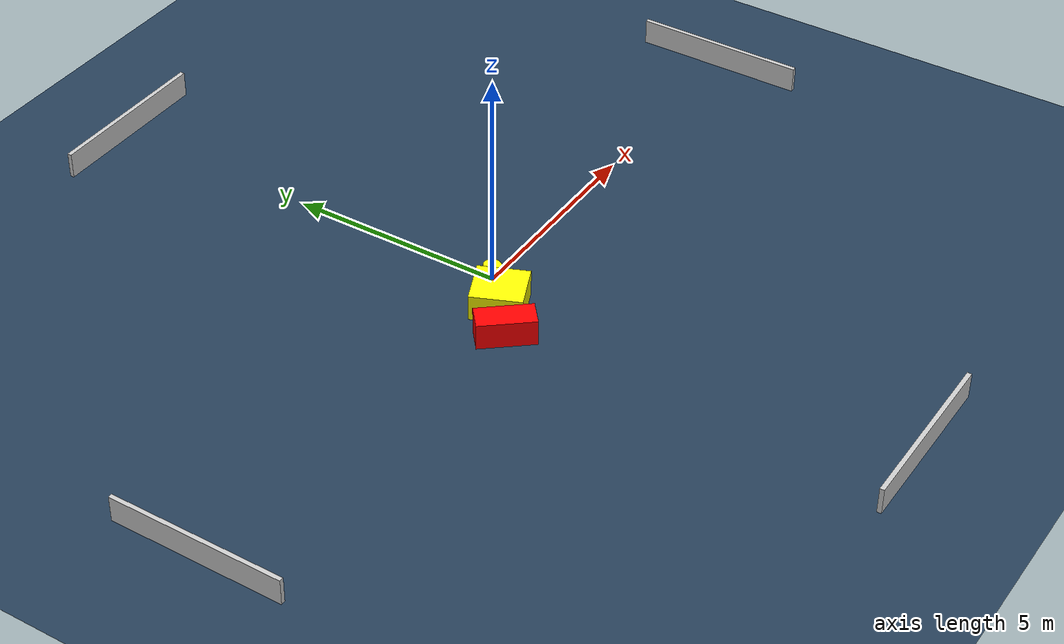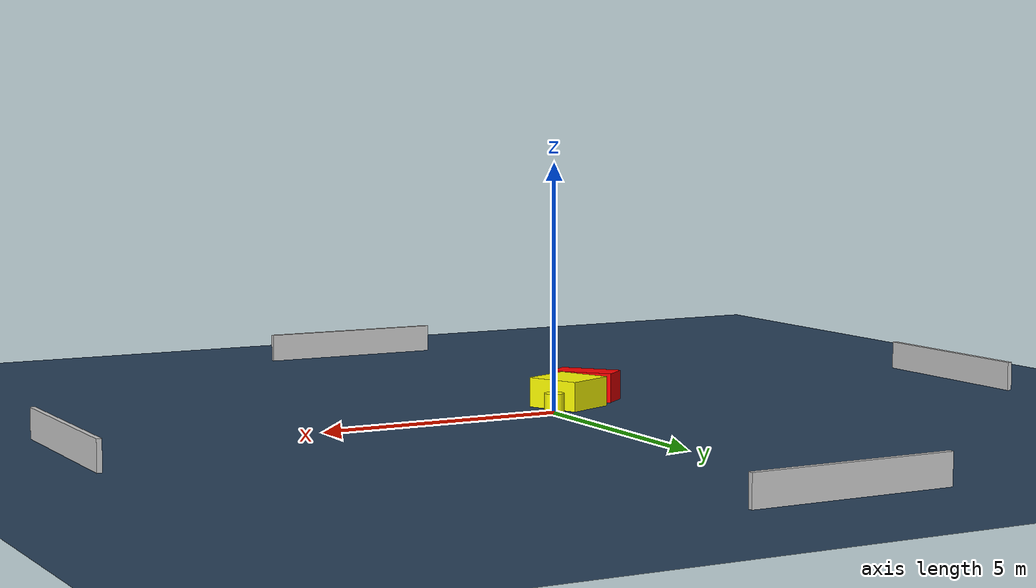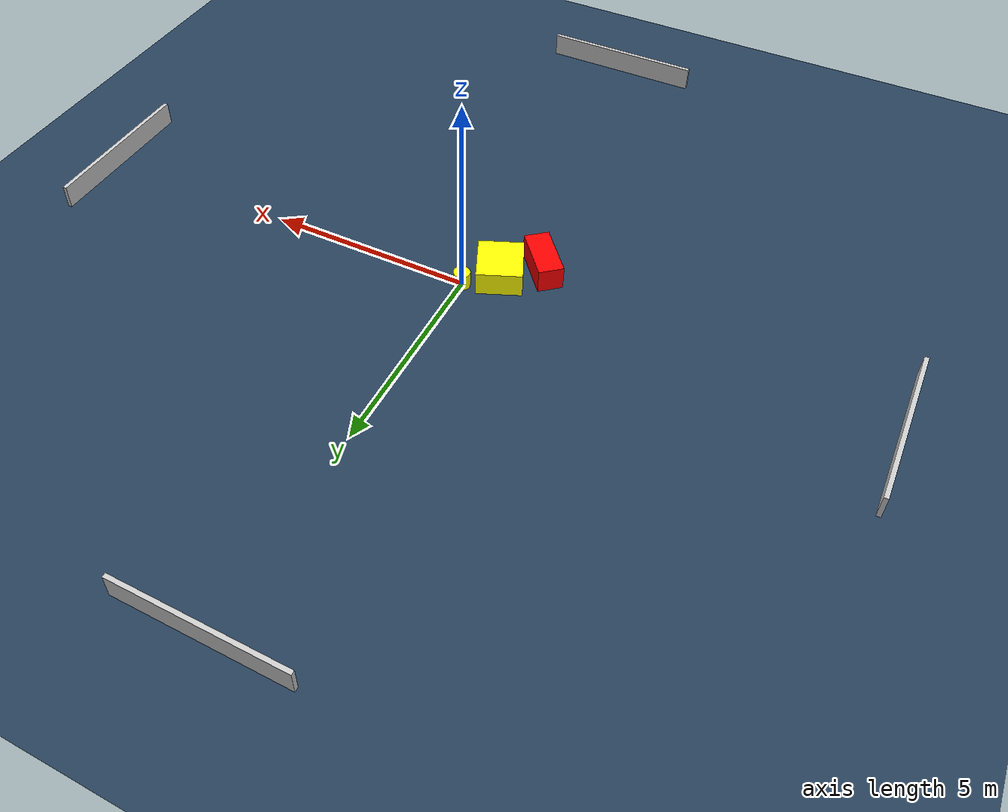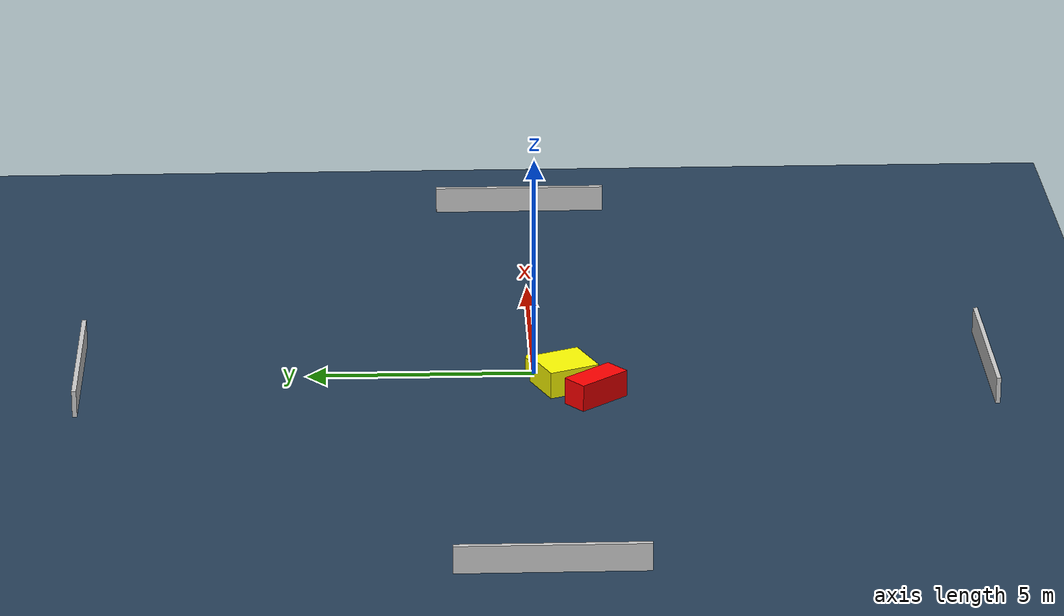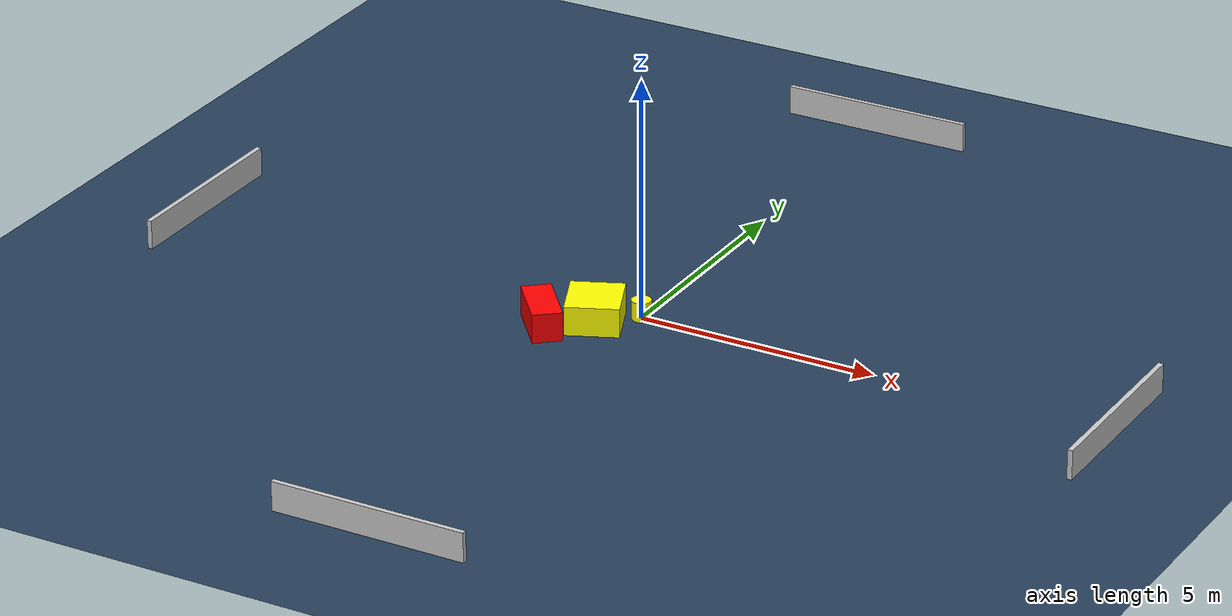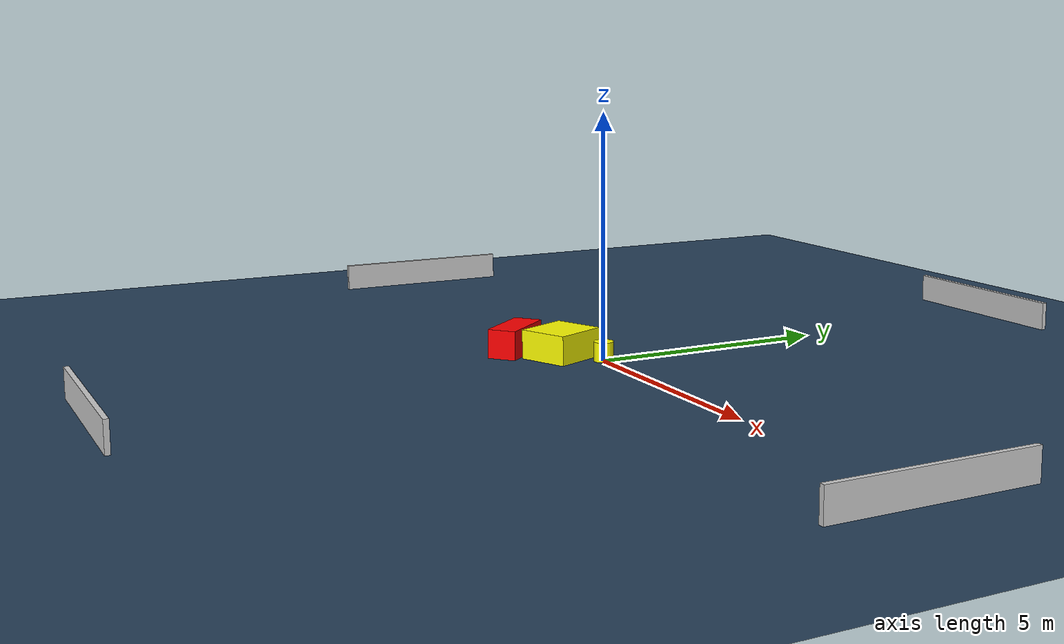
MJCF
<?xml version="1.0" ?>
<mujoco model="generated_environment">
  <option timestep="0.01" integrator="RK4" cone="elliptic"/>
  <default>
    <geom density="1"/>
  </default>
  <asset>
    <texture builtin="gradient" height="3072" name="skybox" rgb1="0.3 0.5 0.7" rgb2="0 0 0" type="skybox" width="512"/>
    <texture builtin="checker" height="300" name="groundplane" rgb1="0.2 0.3 0.4" rgb2="0.1 0.2 0.3" type="2d" width="300"/>
    <material name="groundplane" reflectance="0.2" texrepeat="5 5" texture="groundplane"/>
  </asset>
  <worldbody>
    <light dir="0 0 -1" directional="true" pos="0 0 1.5"/>
    <geom condim="3" friction="0.5 0.005 0.001" material="groundplane" name="floor" pos="0 0 0" size="0 0 0.05" type="plane"/>
    <body name="walls">
      <geom name="wall_1" condim="4" pos="-10.0 0.0 0.3" rgba="0.800000011920929 0.800000011920929 0.800000011920929 1.0" size="0.05 2.0 0.3" type="box"/>
      <geom name="wall_2" condim="4" pos="10.0 0.0 0.3" rgba="0.800000011920929 0.800000011920929 0.800000011920929 1.0" size="0.05 2.0 0.3" type="box"/>
      <geom name="wall_3" condim="4" pos="0.0 -10.0 0.3" rgba="0.800000011920929 0.800000011920929 0.800000011920929 1.0" size="2.0 0.05 0.3" type="box"/>
      <geom name="wall_4" condim="4" pos="0.0 10.0 0.3" rgba="0.800000011920929 0.800000011920929 0.800000011920929 1.0" size="2.0 0.05 0.3" type="box"/>
    </body>
    <body name="robot">
      <joint name="joint_x" type="slide" pos="0 0 0" axis="1 0 0"/>
      <joint name="joint_y" type="slide" pos="0 0 0" axis="0 1 0"/>
      <geom name="robot" type="cylinder" pos="0.0 0.0 0.2" size="0.2 0.2 0.0" mass="5.0" friction="1.0 0.005 0.0001" condim="4" rgba="1.0 1.0 0.0 1.0"/>
    </body>
    <body name="obstacle_1_movable">
      <geom name="obstacle_1_movable" condim="4" pos="-0.6744597753712251 -0.6247114901386499 0.3" euler="0 0 293.2670904859371" friction="0.0 0.005 0.001" rgba="1.0 1.0 0.0 1.0" size="0.5789102134624462 0.5396444775330183 0.3" type="box" mass="0.1"/>
      <joint type="free"/>
    </body>
    <body name="obstacle_2_static">
      <geom name="obstacle_2_static" condim="4" pos="-1.4760072772565664 -1.2810403216810835 0.3" euler="0 0 309.90051542150957" friction="0.0 0.005 0.001" rgba="1.0 0.0 0.0 1.0" size="0.644181106140975 0.30115352413533064 0.3" type="box"/>
    </body>
  </worldbody>
  <actuator>
    <motor name="actuator_x" joint="joint_x" gear="1" ctrlrange="-1 1"/>
    <motor name="actuator_y" joint="joint_y" gear="1" ctrlrange="-1 1"/>
  </actuator>
</mujoco>
